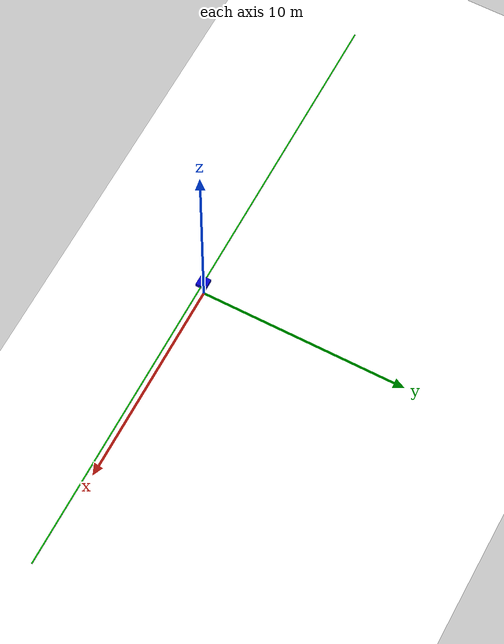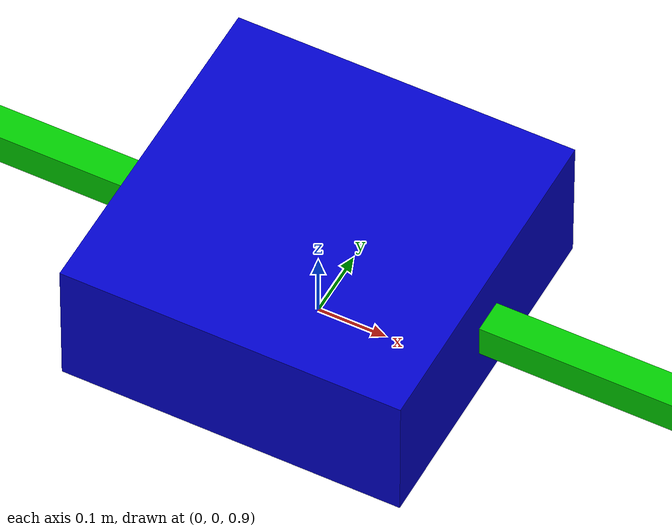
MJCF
<mujoco>
	<option gravity="0 0 -9.81">
		<flag contact="enable" />
	</option>
	<worldbody>
        <light diffuse=".5 .5 .5" pos="0 0 5" dir="0 0 -1" />
		<geom type="plane" size="20 20 0.1" rgba="1 1 1 1" />

        <body name="slideBar" pos="0 0 1" euler="0 0 0">
            <geom type="box" size="15 0.025 0.025" rgba="0 .8 0 1" />
            <inertial pos="0 0 0" mass="100" diaginertia="1.0 1.0 1.0" />
            <body name="cart" pos="0 0 0" euler="0 0 0">
                <joint name="slider_to_cart" type="slide" axis="1 0 0" pos="0 0 0" />
                <geom type="box" size="0.25 0.25 0.1" rgba="0 0 .8 1" />
                <inertial pos="0 0 0" mass="1" diaginertia="1.0 1.0 1.0" />
            </body>
        </body>
	</worldbody>
    <contact>
        <exclude body1="slideBar" body2="cart" />
    </contact>
</mujoco>
